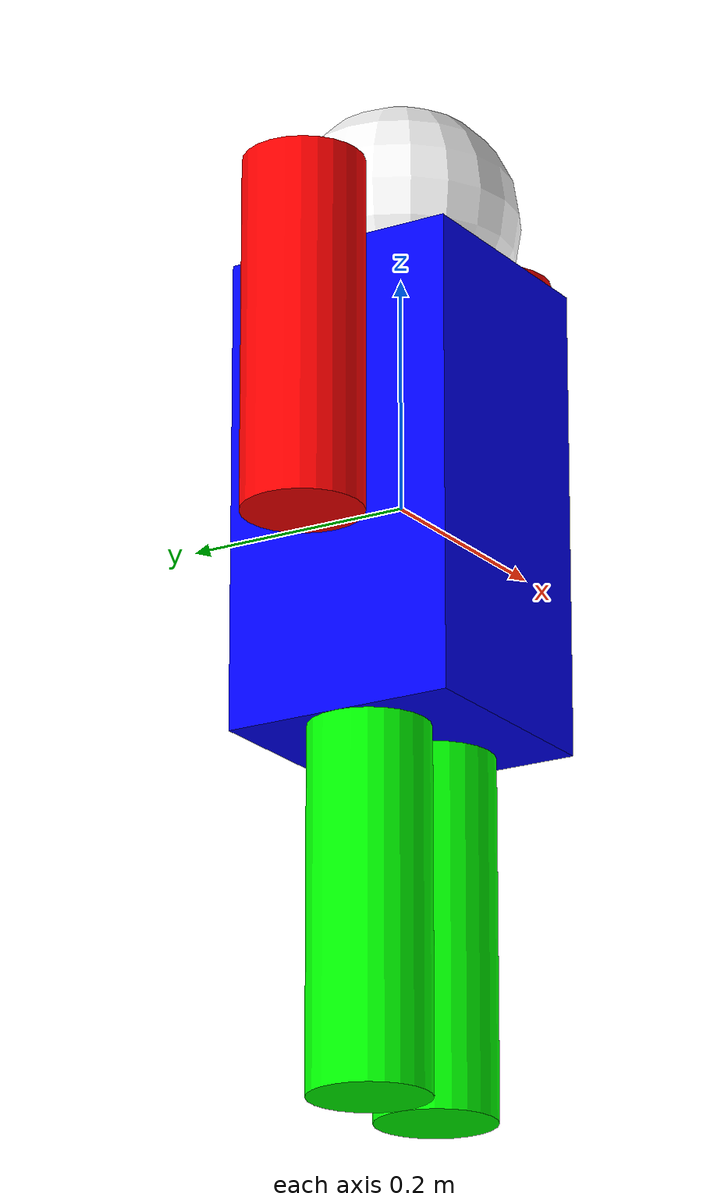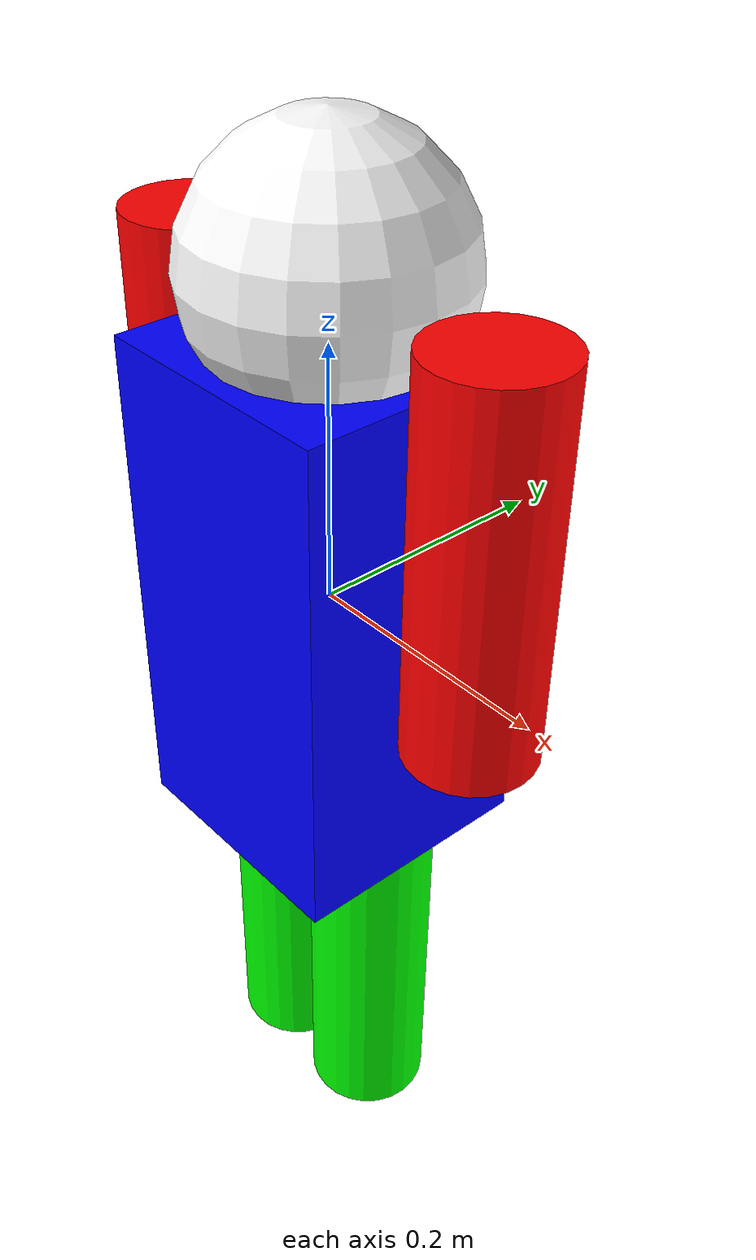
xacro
<?xml version="1.0"?>
<robot xmlns:xacro="http://ros.org/wiki/xacro" name="urdf_test">

  <!-- 몸통 -->
  <link name="base_link">
    <visual>
      <geometry>
        <box size="0.2 0.2 0.4"/>
      </geometry>
      <material name="blue">
        <color rgba="0 0 1 1"/>
      </material>
    </visual>
  </link>

  <!-- 머리 -->
  <link name="head">
    <visual>
      <geometry>
        <sphere radius="0.1"/>
      </geometry>
      <material name="white">
        <color rgba="1 1 1 1"/>
      </material>
    </visual>
  </link>

  <joint name="neck" type="revolute">
    <parent link="base_link"/>
    <child link="head"/>
    <origin xyz="0 0 0.25" rpy="0 0 0"/>
    <axis xyz="0 0 1"/>
    <limit lower="-1.57" upper="1.57" effort="1.0" velocity="1.0"/>
  </joint>

  <!-- 왼쪽 팔 -->
  <link name="left_arm">
    <visual>
      <geometry>
        <cylinder radius="0.05" length="0.3"/>
      </geometry>
      <material name="red">
        <color rgba="1 0 0 1"/>
      </material>
    </visual>
  </link>

  <joint name="left_shoulder" type="revolute">
    <parent link="base_link"/>
    <child link="left_arm"/>
    <origin xyz="0.15 0 0.1" rpy="0 0 0"/>
    <axis xyz="1 0 0"/>
    <limit lower="-1.57" upper="1.57" effort="1.0" velocity="1.0"/>
  </joint>

  <!-- 오른쪽 팔 -->
  <link name="right_arm">
    <visual>
      <geometry>
        <cylinder radius="0.05" length="0.3"/>
      </geometry>
      <material name="red">
        <color rgba="1 0 0 1"/>
      </material>
    </visual>
  </link>

  <joint name="right_shoulder" type="revolute">
    <parent link="base_link"/>
    <child link="right_arm"/>
    <origin xyz="-0.15 0 0.1" rpy="0 0 0"/>
    <axis xyz="1 0 0"/>
    <limit lower="-1.57" upper="1.57" effort="1.0" velocity="1.0"/>
  </joint>

  <!-- 왼쪽 다리 -->
  <link name="left_leg">
    <visual>
      <geometry>
        <cylinder radius="0.05" length="0.4"/>
      </geometry>
      <material name="green">
        <color rgba="0 1 0 1"/>
      </material>
    </visual>
  </link>

  <joint name="left_hip" type="revolute">
    <parent link="base_link"/>
    <child link="left_leg"/>
    <origin xyz="0.05 0 -0.3" rpy="0 0 0"/>
    <axis xyz="1 0 0"/>
    <limit lower="-1.57" upper="1.57" effort="1.0" velocity="1.0"/>
  </joint>

  <!-- 오른쪽 다리 -->
  <link name="right_leg">
    <visual>
      <geometry>
        <cylinder radius="0.05" length="0.4"/>
      </geometry>
      <material name="green">
        <color rgba="0 1 0 1"/>
      </material>
    </visual>
  </link>

  <joint name="right_hip" type="revolute">
    <parent link="base_link"/>
    <child link="right_leg"/>
    <origin xyz="-0.05 0 -0.3" rpy="0 0 0"/>
    <axis xyz="1 0 0"/>
    <limit lower="-1.57" upper="1.57" effort="1.0" velocity="1.0"/>
  </joint>

</robot>
